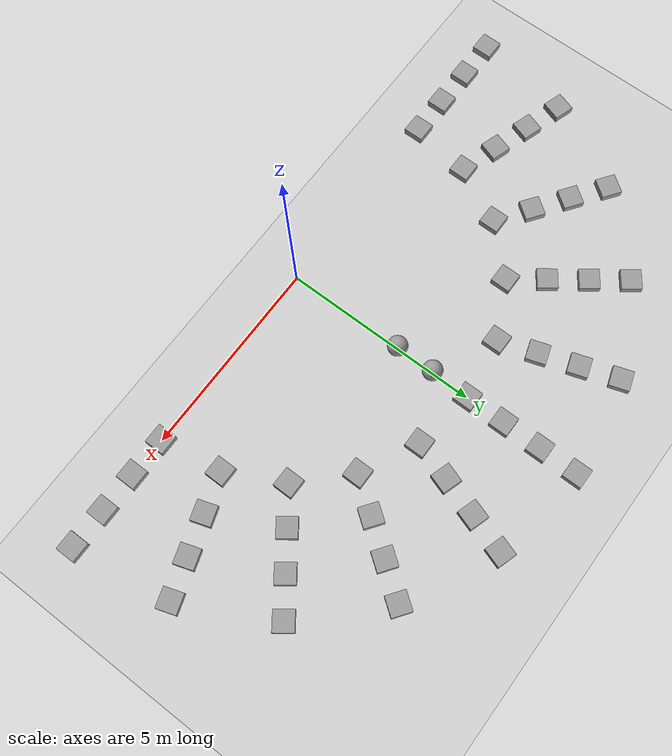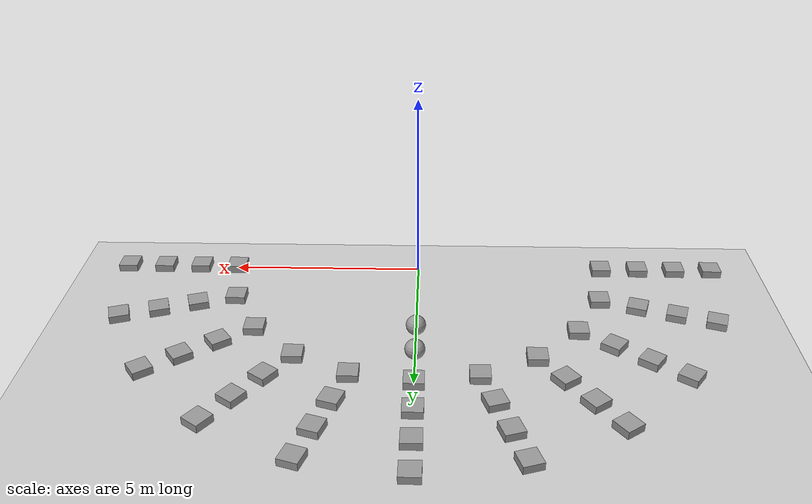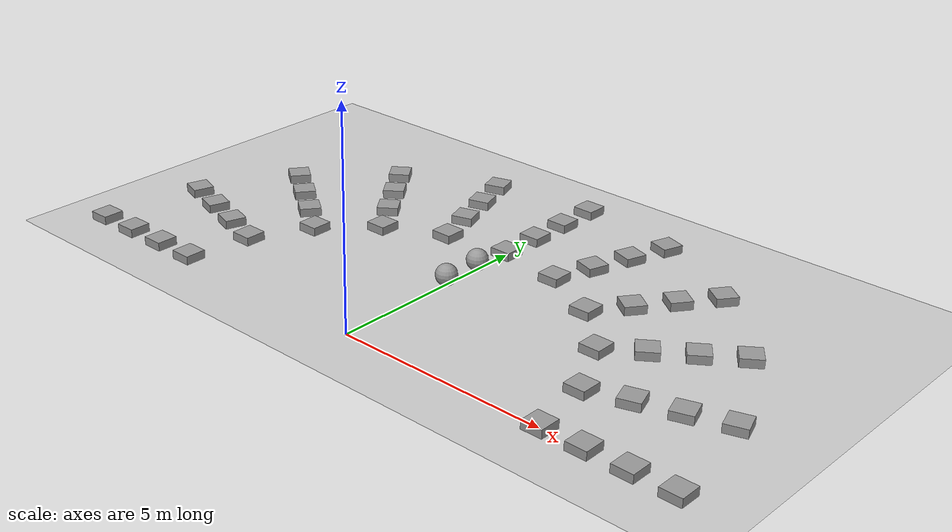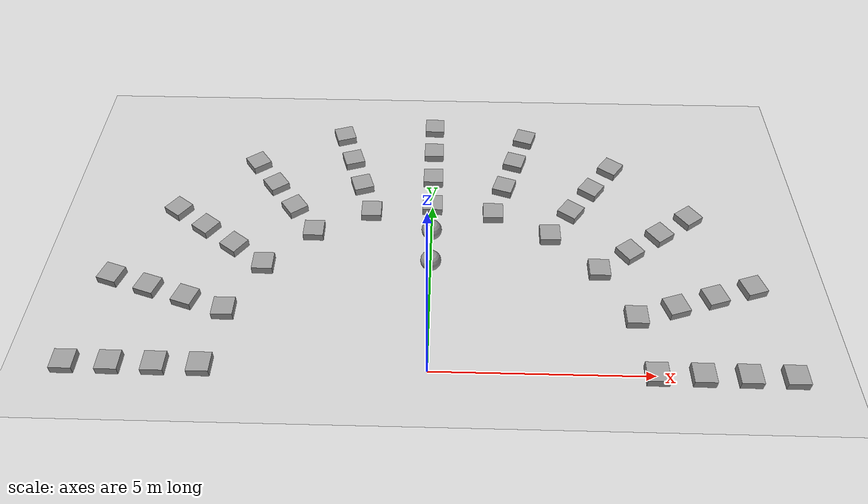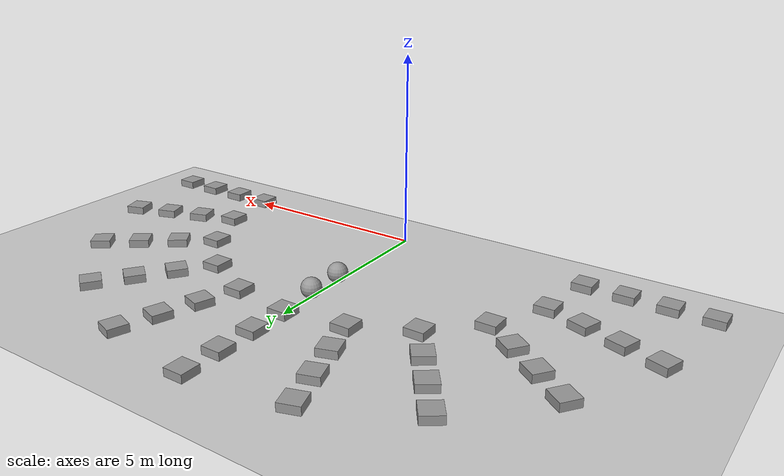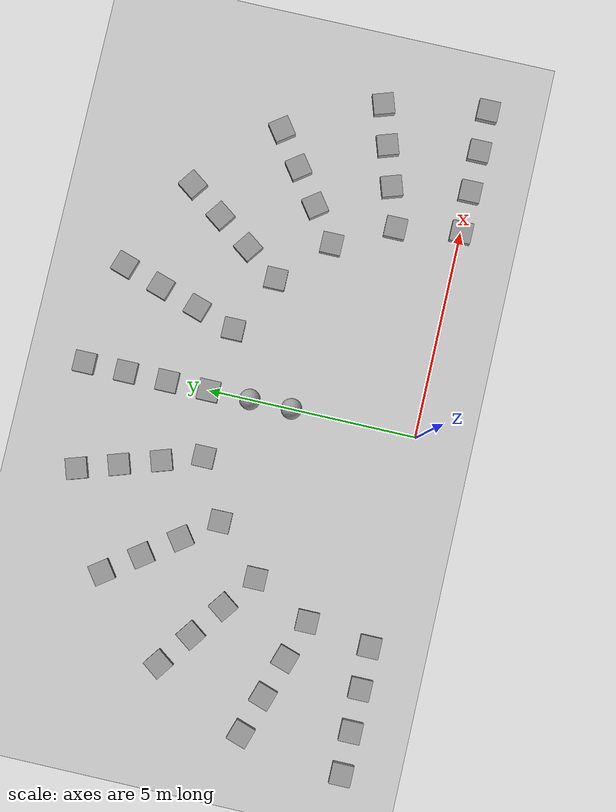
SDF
<?xml version="1.0" ?>
<!-- this file was generated using embedded ruby -->
<sdf version='1.6'>
  <world name='default'>
    <include>
      <uri>model://sun</uri>
    </include>
    <include>
      <uri>model://ground_plane</uri>
    </include>
    <gravity>0 1 -9.81</gravity>
    <physics type="ode">
      <dart>
        <collision_detector>bullet</collision_detector>
      </dart>
    </physics>

    <model name='spheres'>
      <pose>0 3 0.25  0 0 0</pose>
      <link name='link_1'>
        <inertial>
          <mass>1</mass>
          <inertia>
            <ixx>0.025</ixx>
            <ixy>0</ixy>
            <ixz>0</ixz>
            <iyy>0.025</iyy>
            <iyz>0</iyz>
            <izz>0.025</izz>
          </inertia>
        </inertial>
        <collision name='collision'>
          <geometry>
            <sphere>
              <radius>0.25</radius>
            </sphere>
          </geometry>
          <surface>
            <friction>
              <ode>
                <mu>100</mu>
                <mu2>0</mu2>
                <fdir1>1 0 0</fdir1>
              </ode>
            </friction>
          </surface>
        </collision>
        <visual name='visual'>
          <geometry>
            <sphere>
              <radius>0.25</radius>
            </sphere>
          </geometry>
          <material>
            <script>
              <name>Gazebo/Grey</name>
              <uri>file://media/materials/scripts/gazebo.material</uri>
            </script>
          </material>
        </visual>
      </link>
      <link name='link_2'>
        <pose>0 1 0  0 0 0</pose>
        <inertial>
          <mass>1</mass>
          <inertia>
            <ixx>0.025</ixx>
            <ixy>0</ixy>
            <ixz>0</ixz>
            <iyy>0.025</iyy>
            <iyz>0</iyz>
            <izz>0.025</izz>
          </inertia>
        </inertial>
        <collision name='collision'>
          <geometry>
            <sphere>
              <radius>0.25</radius>
            </sphere>
          </geometry>
          <surface>
            <friction>
              <ode>
                <mu>100</mu>
                <mu2>0</mu2>
                <fdir1>1 0 0</fdir1>
              </ode>
            </friction>
          </surface>
        </collision>
        <visual name='visual'>
          <geometry>
            <sphere>
              <radius>0.25</radius>
            </sphere>
          </geometry>
          <material>
            <script>
              <name>Gazebo/Grey</name>
              <uri>file://media/materials/scripts/gazebo.material</uri>
            </script>
          </material>
        </visual>
      </link>
    </model>

    <model name='box_fdir_0'>
      <pose>5.0 0.0 0.1 0 -0 0</pose>
      <link name='link_1'>
        <inertial>
          <mass>1</mass>
          <inertia>
            <ixx>0.02416666666666667</ixx>
            <ixy>0</ixy>
            <ixz>0</ixz>
            <iyy>0.02416666666666667</iyy>
            <iyz>0</iyz>
            <izz>0.041666666666666664</izz>
          </inertia>
        </inertial>
        <collision name='collision'>
          <geometry>
            <box>
              <size>0.5 0.5 0.2</size>
            </box>
          </geometry>
          <surface>
            <friction>
              <ode>
                <mu>100</mu>
                <mu2>0</mu2>
                <fdir1>-0.0 1.0 0</fdir1>
              </ode>
            </friction>
          </surface>
        </collision>
        <visual name='visual'>
          <geometry>
            <box>
              <size>0.5 0.5 0.2</size>
            </box>
          </geometry>
          <material>
            <script>
              <name>Gazebo/Grey</name>
              <uri>file://media/materials/scripts/gazebo.material</uri>
            </script>
          </material>
        </visual>
      </link>
    </model>

    <model name='box_fdir_1'>
      <pose>4.755282581475767 1.545084971874737 0.1 0 -0 0</pose>
      <link name='link_1'>
        <inertial>
          <mass>1</mass>
          <inertia>
            <ixx>0.02416666666666667</ixx>
            <ixy>0</ixy>
            <ixz>0</ixz>
            <iyy>0.02416666666666667</iyy>
            <iyz>0</iyz>
            <izz>0.041666666666666664</izz>
          </inertia>
        </inertial>
        <collision name='collision'>
          <geometry>
            <box>
              <size>0.5 0.5 0.2</size>
            </box>
          </geometry>
          <surface>
            <friction>
              <ode>
                <mu>100</mu>
                <mu2>0</mu2>
                <fdir1>-0.3090169943749474 0.9510565162951535 0</fdir1>
              </ode>
            </friction>
          </surface>
        </collision>
        <visual name='visual'>
          <geometry>
            <box>
              <size>0.5 0.5 0.2</size>
            </box>
          </geometry>
          <material>
            <script>
              <name>Gazebo/Grey</name>
              <uri>file://media/materials/scripts/gazebo.material</uri>
            </script>
          </material>
        </visual>
      </link>
    </model>

    <model name='box_fdir_2'>
      <pose>4.045084971874737 2.938926261462366 0.1 0 -0 0</pose>
      <link name='link_1'>
        <inertial>
          <mass>1</mass>
          <inertia>
            <ixx>0.02416666666666667</ixx>
            <ixy>0</ixy>
            <ixz>0</ixz>
            <iyy>0.02416666666666667</iyy>
            <iyz>0</iyz>
            <izz>0.041666666666666664</izz>
          </inertia>
        </inertial>
        <collision name='collision'>
          <geometry>
            <box>
              <size>0.5 0.5 0.2</size>
            </box>
          </geometry>
          <surface>
            <friction>
              <ode>
                <mu>100</mu>
                <mu2>0</mu2>
                <fdir1>-0.5877852522924731 0.8090169943749475 0</fdir1>
              </ode>
            </friction>
          </surface>
        </collision>
        <visual name='visual'>
          <geometry>
            <box>
              <size>0.5 0.5 0.2</size>
            </box>
          </geometry>
          <material>
            <script>
              <name>Gazebo/Grey</name>
              <uri>file://media/materials/scripts/gazebo.material</uri>
            </script>
          </material>
        </visual>
      </link>
    </model>

    <model name='box_fdir_3'>
      <pose>2.938926261462366 4.045084971874737 0.1 0 -0 0</pose>
      <link name='link_1'>
        <inertial>
          <mass>1</mass>
          <inertia>
            <ixx>0.02416666666666667</ixx>
            <ixy>0</ixy>
            <ixz>0</ixz>
            <iyy>0.02416666666666667</iyy>
            <iyz>0</iyz>
            <izz>0.041666666666666664</izz>
          </inertia>
        </inertial>
        <collision name='collision'>
          <geometry>
            <box>
              <size>0.5 0.5 0.2</size>
            </box>
          </geometry>
          <surface>
            <friction>
              <ode>
                <mu>100</mu>
                <mu2>0</mu2>
                <fdir1>-0.8090169943749475 0.5877852522924731 0</fdir1>
              </ode>
            </friction>
          </surface>
        </collision>
        <visual name='visual'>
          <geometry>
            <box>
              <size>0.5 0.5 0.2</size>
            </box>
          </geometry>
          <material>
            <script>
              <name>Gazebo/Grey</name>
              <uri>file://media/materials/scripts/gazebo.material</uri>
            </script>
          </material>
        </visual>
      </link>
    </model>

    <model name='box_fdir_4'>
      <pose>1.5450849718747373 4.755282581475767 0.1 0 -0 0</pose>
      <link name='link_1'>
        <inertial>
          <mass>1</mass>
          <inertia>
            <ixx>0.02416666666666667</ixx>
            <ixy>0</ixy>
            <ixz>0</ixz>
            <iyy>0.02416666666666667</iyy>
            <iyz>0</iyz>
            <izz>0.041666666666666664</izz>
          </inertia>
        </inertial>
        <collision name='collision'>
          <geometry>
            <box>
              <size>0.5 0.5 0.2</size>
            </box>
          </geometry>
          <surface>
            <friction>
              <ode>
                <mu>100</mu>
                <mu2>0</mu2>
                <fdir1>-0.9510565162951535 0.30901699437494745 0</fdir1>
              </ode>
            </friction>
          </surface>
        </collision>
        <visual name='visual'>
          <geometry>
            <box>
              <size>0.5 0.5 0.2</size>
            </box>
          </geometry>
          <material>
            <script>
              <name>Gazebo/Grey</name>
              <uri>file://media/materials/scripts/gazebo.material</uri>
            </script>
          </material>
        </visual>
      </link>
    </model>

    <model name='box_fdir_5'>
      <pose>3.061616997868383e-16 5.0 0.1 0 -0 0</pose>
      <link name='link_1'>
        <inertial>
          <mass>1</mass>
          <inertia>
            <ixx>0.02416666666666667</ixx>
            <ixy>0</ixy>
            <ixz>0</ixz>
            <iyy>0.02416666666666667</iyy>
            <iyz>0</iyz>
            <izz>0.041666666666666664</izz>
          </inertia>
        </inertial>
        <collision name='collision'>
          <geometry>
            <box>
              <size>0.5 0.5 0.2</size>
            </box>
          </geometry>
          <surface>
            <friction>
              <ode>
                <mu>100</mu>
                <mu2>0</mu2>
                <fdir1>-1.0 6.123233995736766e-17 0</fdir1>
              </ode>
            </friction>
          </surface>
        </collision>
        <visual name='visual'>
          <geometry>
            <box>
              <size>0.5 0.5 0.2</size>
            </box>
          </geometry>
          <material>
            <script>
              <name>Gazebo/Grey</name>
              <uri>file://media/materials/scripts/gazebo.material</uri>
            </script>
          </material>
        </visual>
      </link>
    </model>

    <model name='box_fdir_6'>
      <pose>-1.5450849718747368 4.755282581475768 0.1 0 -0 0</pose>
      <link name='link_1'>
        <inertial>
          <mass>1</mass>
          <inertia>
            <ixx>0.02416666666666667</ixx>
            <ixy>0</ixy>
            <ixz>0</ixz>
            <iyy>0.02416666666666667</iyy>
            <iyz>0</iyz>
            <izz>0.041666666666666664</izz>
          </inertia>
        </inertial>
        <collision name='collision'>
          <geometry>
            <box>
              <size>0.5 0.5 0.2</size>
            </box>
          </geometry>
          <surface>
            <friction>
              <ode>
                <mu>100</mu>
                <mu2>0</mu2>
                <fdir1>-0.9510565162951536 -0.30901699437494734 0</fdir1>
              </ode>
            </friction>
          </surface>
        </collision>
        <visual name='visual'>
          <geometry>
            <box>
              <size>0.5 0.5 0.2</size>
            </box>
          </geometry>
          <material>
            <script>
              <name>Gazebo/Grey</name>
              <uri>file://media/materials/scripts/gazebo.material</uri>
            </script>
          </material>
        </visual>
      </link>
    </model>

    <model name='box_fdir_7'>
      <pose>-2.938926261462365 4.045084971874737 0.1 0 -0 0</pose>
      <link name='link_1'>
        <inertial>
          <mass>1</mass>
          <inertia>
            <ixx>0.02416666666666667</ixx>
            <ixy>0</ixy>
            <ixz>0</ixz>
            <iyy>0.02416666666666667</iyy>
            <iyz>0</iyz>
            <izz>0.041666666666666664</izz>
          </inertia>
        </inertial>
        <collision name='collision'>
          <geometry>
            <box>
              <size>0.5 0.5 0.2</size>
            </box>
          </geometry>
          <surface>
            <friction>
              <ode>
                <mu>100</mu>
                <mu2>0</mu2>
                <fdir1>-0.8090169943749475 -0.587785252292473 0</fdir1>
              </ode>
            </friction>
          </surface>
        </collision>
        <visual name='visual'>
          <geometry>
            <box>
              <size>0.5 0.5 0.2</size>
            </box>
          </geometry>
          <material>
            <script>
              <name>Gazebo/Grey</name>
              <uri>file://media/materials/scripts/gazebo.material</uri>
            </script>
          </material>
        </visual>
      </link>
    </model>

    <model name='box_fdir_8'>
      <pose>-4.045084971874736 2.9389262614623664 0.1 0 -0 0</pose>
      <link name='link_1'>
        <inertial>
          <mass>1</mass>
          <inertia>
            <ixx>0.02416666666666667</ixx>
            <ixy>0</ixy>
            <ixz>0</ixz>
            <iyy>0.02416666666666667</iyy>
            <iyz>0</iyz>
            <izz>0.041666666666666664</izz>
          </inertia>
        </inertial>
        <collision name='collision'>
          <geometry>
            <box>
              <size>0.5 0.5 0.2</size>
            </box>
          </geometry>
          <surface>
            <friction>
              <ode>
                <mu>100</mu>
                <mu2>0</mu2>
                <fdir1>-0.5877852522924732 -0.8090169943749473 0</fdir1>
              </ode>
            </friction>
          </surface>
        </collision>
        <visual name='visual'>
          <geometry>
            <box>
              <size>0.5 0.5 0.2</size>
            </box>
          </geometry>
          <material>
            <script>
              <name>Gazebo/Grey</name>
              <uri>file://media/materials/scripts/gazebo.material</uri>
            </script>
          </material>
        </visual>
      </link>
    </model>

    <model name='box_fdir_9'>
      <pose>-4.755282581475767 1.5450849718747375 0.1 0 -0 0</pose>
      <link name='link_1'>
        <inertial>
          <mass>1</mass>
          <inertia>
            <ixx>0.02416666666666667</ixx>
            <ixy>0</ixy>
            <ixz>0</ixz>
            <iyy>0.02416666666666667</iyy>
            <iyz>0</iyz>
            <izz>0.041666666666666664</izz>
          </inertia>
        </inertial>
        <collision name='collision'>
          <geometry>
            <box>
              <size>0.5 0.5 0.2</size>
            </box>
          </geometry>
          <surface>
            <friction>
              <ode>
                <mu>100</mu>
                <mu2>0</mu2>
                <fdir1>-0.3090169943749475 -0.9510565162951535 0</fdir1>
              </ode>
            </friction>
          </surface>
        </collision>
        <visual name='visual'>
          <geometry>
            <box>
              <size>0.5 0.5 0.2</size>
            </box>
          </geometry>
          <material>
            <script>
              <name>Gazebo/Grey</name>
              <uri>file://media/materials/scripts/gazebo.material</uri>
            </script>
          </material>
        </visual>
      </link>
    </model>

    <model name='box_fdir_10'>
      <pose>-5.0 6.123233995736766e-16 0.1 0 -0 0</pose>
      <link name='link_1'>
        <inertial>
          <mass>1</mass>
          <inertia>
            <ixx>0.02416666666666667</ixx>
            <ixy>0</ixy>
            <ixz>0</ixz>
            <iyy>0.02416666666666667</iyy>
            <iyz>0</iyz>
            <izz>0.041666666666666664</izz>
          </inertia>
        </inertial>
        <collision name='collision'>
          <geometry>
            <box>
              <size>0.5 0.5 0.2</size>
            </box>
          </geometry>
          <surface>
            <friction>
              <ode>
                <mu>100</mu>
                <mu2>0</mu2>
                <fdir1>-1.2246467991473532e-16 -1.0 0</fdir1>
              </ode>
            </friction>
          </surface>
        </collision>
        <visual name='visual'>
          <geometry>
            <box>
              <size>0.5 0.5 0.2</size>
            </box>
          </geometry>
          <material>
            <script>
              <name>Gazebo/Grey</name>
              <uri>file://media/materials/scripts/gazebo.material</uri>
            </script>
          </material>
        </visual>
      </link>
    </model>

    <model name='box_collision_0'>
      <pose>6.0 0.0 0.1 0 -0 0</pose>
      <link name='link_1'>
        <inertial>
          <mass>1</mass>
          <inertia>
            <ixx>0.02416666666666667</ixx>
            <ixy>0</ixy>
            <ixz>0</ixz>
            <iyy>0.02416666666666667</iyy>
            <iyz>0</iyz>
            <izz>0.041666666666666664</izz>
          </inertia>
        </inertial>
        <collision name='collision'>
          <geometry>
            <box>
              <size>0.5 0.5 0.2</size>
            </box>
          </geometry>
          <pose>0 0 0  0 0 0.0</pose>
          <surface>
            <friction>
              <ode>
                <mu>100</mu>
                <mu2>0</mu2>
                <fdir1>0 1 0</fdir1>
              </ode>
            </friction>
          </surface>
        </collision>
        <visual name='visual'>
          <geometry>
            <box>
              <size>0.5 0.5 0.2</size>
            </box>
          </geometry>
          <pose>0 0 0  0 0 0.0</pose>
          <material>
            <script>
              <name>Gazebo/Grey</name>
              <uri>file://media/materials/scripts/gazebo.material</uri>
            </script>
          </material>
        </visual>
      </link>
    </model>

    <model name='box_collision_1'>
      <pose>5.706339097770921 1.8541019662496843 0.1 0 -0 0</pose>
      <link name='link_1'>
        <inertial>
          <mass>1</mass>
          <inertia>
            <ixx>0.02416666666666667</ixx>
            <ixy>0</ixy>
            <ixz>0</ixz>
            <iyy>0.02416666666666667</iyy>
            <iyz>0</iyz>
            <izz>0.041666666666666664</izz>
          </inertia>
        </inertial>
        <collision name='collision'>
          <geometry>
            <box>
              <size>0.5 0.5 0.2</size>
            </box>
          </geometry>
          <pose>0 0 0  0 0 0.3141592653589793</pose>
          <surface>
            <friction>
              <ode>
                <mu>100</mu>
                <mu2>0</mu2>
                <fdir1>0 1 0</fdir1>
              </ode>
            </friction>
          </surface>
        </collision>
        <visual name='visual'>
          <geometry>
            <box>
              <size>0.5 0.5 0.2</size>
            </box>
          </geometry>
          <pose>0 0 0  0 0 0.3141592653589793</pose>
          <material>
            <script>
              <name>Gazebo/Grey</name>
              <uri>file://media/materials/scripts/gazebo.material</uri>
            </script>
          </material>
        </visual>
      </link>
    </model>

    <model name='box_collision_2'>
      <pose>4.854101966249685 3.526711513754839 0.1 0 -0 0</pose>
      <link name='link_1'>
        <inertial>
          <mass>1</mass>
          <inertia>
            <ixx>0.02416666666666667</ixx>
            <ixy>0</ixy>
            <ixz>0</ixz>
            <iyy>0.02416666666666667</iyy>
            <iyz>0</iyz>
            <izz>0.041666666666666664</izz>
          </inertia>
        </inertial>
        <collision name='collision'>
          <geometry>
            <box>
              <size>0.5 0.5 0.2</size>
            </box>
          </geometry>
          <pose>0 0 0  0 0 0.6283185307179586</pose>
          <surface>
            <friction>
              <ode>
                <mu>100</mu>
                <mu2>0</mu2>
                <fdir1>0 1 0</fdir1>
              </ode>
            </friction>
          </surface>
        </collision>
        <visual name='visual'>
          <geometry>
            <box>
              <size>0.5 0.5 0.2</size>
            </box>
          </geometry>
          <pose>0 0 0  0 0 0.6283185307179586</pose>
          <material>
            <script>
              <name>Gazebo/Grey</name>
              <uri>file://media/materials/scripts/gazebo.material</uri>
            </script>
          </material>
        </visual>
      </link>
    </model>

    <model name='box_collision_3'>
      <pose>3.526711513754839 4.854101966249685 0.1 0 -0 0</pose>
      <link name='link_1'>
        <inertial>
          <mass>1</mass>
          <inertia>
            <ixx>0.02416666666666667</ixx>
            <ixy>0</ixy>
            <ixz>0</ixz>
            <iyy>0.02416666666666667</iyy>
            <iyz>0</iyz>
            <izz>0.041666666666666664</izz>
          </inertia>
        </inertial>
        <collision name='collision'>
          <geometry>
            <box>
              <size>0.5 0.5 0.2</size>
            </box>
          </geometry>
          <pose>0 0 0  0 0 0.9424777960769379</pose>
          <surface>
            <friction>
              <ode>
                <mu>100</mu>
                <mu2>0</mu2>
                <fdir1>0 1 0</fdir1>
              </ode>
            </friction>
          </surface>
        </collision>
        <visual name='visual'>
          <geometry>
            <box>
              <size>0.5 0.5 0.2</size>
            </box>
          </geometry>
          <pose>0 0 0  0 0 0.9424777960769379</pose>
          <material>
            <script>
              <name>Gazebo/Grey</name>
              <uri>file://media/materials/scripts/gazebo.material</uri>
            </script>
          </material>
        </visual>
      </link>
    </model>

    <model name='box_collision_4'>
      <pose>1.8541019662496847 5.706339097770921 0.1 0 -0 0</pose>
      <link name='link_1'>
        <inertial>
          <mass>1</mass>
          <inertia>
            <ixx>0.02416666666666667</ixx>
            <ixy>0</ixy>
            <ixz>0</ixz>
            <iyy>0.02416666666666667</iyy>
            <iyz>0</iyz>
            <izz>0.041666666666666664</izz>
          </inertia>
        </inertial>
        <collision name='collision'>
          <geometry>
            <box>
              <size>0.5 0.5 0.2</size>
            </box>
          </geometry>
          <pose>0 0 0  0 0 1.2566370614359172</pose>
          <surface>
            <friction>
              <ode>
                <mu>100</mu>
                <mu2>0</mu2>
                <fdir1>0 1 0</fdir1>
              </ode>
            </friction>
          </surface>
        </collision>
        <visual name='visual'>
          <geometry>
            <box>
              <size>0.5 0.5 0.2</size>
            </box>
          </geometry>
          <pose>0 0 0  0 0 1.2566370614359172</pose>
          <material>
            <script>
              <name>Gazebo/Grey</name>
              <uri>file://media/materials/scripts/gazebo.material</uri>
            </script>
          </material>
        </visual>
      </link>
    </model>

    <model name='box_collision_5'>
      <pose>3.6739403974420594e-16 6.0 0.1 0 -0 0</pose>
      <link name='link_1'>
        <inertial>
          <mass>1</mass>
          <inertia>
            <ixx>0.02416666666666667</ixx>
            <ixy>0</ixy>
            <ixz>0</ixz>
            <iyy>0.02416666666666667</iyy>
            <iyz>0</iyz>
            <izz>0.041666666666666664</izz>
          </inertia>
        </inertial>
        <collision name='collision'>
          <geometry>
            <box>
              <size>0.5 0.5 0.2</size>
            </box>
          </geometry>
          <pose>0 0 0  0 0 1.5707963267948966</pose>
          <surface>
            <friction>
              <ode>
                <mu>100</mu>
                <mu2>0</mu2>
                <fdir1>0 1 0</fdir1>
              </ode>
            </friction>
          </surface>
        </collision>
        <visual name='visual'>
          <geometry>
            <box>
              <size>0.5 0.5 0.2</size>
            </box>
          </geometry>
          <pose>0 0 0  0 0 1.5707963267948966</pose>
          <material>
            <script>
              <name>Gazebo/Grey</name>
              <uri>file://media/materials/scripts/gazebo.material</uri>
            </script>
          </material>
        </visual>
      </link>
    </model>

    <model name='box_collision_6'>
      <pose>-1.854101966249684 5.706339097770922 0.1 0 -0 0</pose>
      <link name='link_1'>
        <inertial>
          <mass>1</mass>
          <inertia>
            <ixx>0.02416666666666667</ixx>
            <ixy>0</ixy>
            <ixz>0</ixz>
            <iyy>0.02416666666666667</iyy>
            <iyz>0</iyz>
            <izz>0.041666666666666664</izz>
          </inertia>
        </inertial>
        <collision name='collision'>
          <geometry>
            <box>
              <size>0.5 0.5 0.2</size>
            </box>
          </geometry>
          <pose>0 0 0  0 0 1.8849555921538759</pose>
          <surface>
            <friction>
              <ode>
                <mu>100</mu>
                <mu2>0</mu2>
                <fdir1>0 1 0</fdir1>
              </ode>
            </friction>
          </surface>
        </collision>
        <visual name='visual'>
          <geometry>
            <box>
              <size>0.5 0.5 0.2</size>
            </box>
          </geometry>
          <pose>0 0 0  0 0 1.8849555921538759</pose>
          <material>
            <script>
              <name>Gazebo/Grey</name>
              <uri>file://media/materials/scripts/gazebo.material</uri>
            </script>
          </material>
        </visual>
      </link>
    </model>

    <model name='box_collision_7'>
      <pose>-3.5267115137548384 4.854101966249685 0.1 0 -0 0</pose>
      <link name='link_1'>
        <inertial>
          <mass>1</mass>
          <inertia>
            <ixx>0.02416666666666667</ixx>
            <ixy>0</ixy>
            <ixz>0</ixz>
            <iyy>0.02416666666666667</iyy>
            <iyz>0</iyz>
            <izz>0.041666666666666664</izz>
          </inertia>
        </inertial>
        <collision name='collision'>
          <geometry>
            <box>
              <size>0.5 0.5 0.2</size>
            </box>
          </geometry>
          <pose>0 0 0  0 0 2.199114857512855</pose>
          <surface>
            <friction>
              <ode>
                <mu>100</mu>
                <mu2>0</mu2>
                <fdir1>0 1 0</fdir1>
              </ode>
            </friction>
          </surface>
        </collision>
        <visual name='visual'>
          <geometry>
            <box>
              <size>0.5 0.5 0.2</size>
            </box>
          </geometry>
          <pose>0 0 0  0 0 2.199114857512855</pose>
          <material>
            <script>
              <name>Gazebo/Grey</name>
              <uri>file://media/materials/scripts/gazebo.material</uri>
            </script>
          </material>
        </visual>
      </link>
    </model>

    <model name='box_collision_8'>
      <pose>-4.854101966249684 3.5267115137548393 0.1 0 -0 0</pose>
      <link name='link_1'>
        <inertial>
          <mass>1</mass>
          <inertia>
            <ixx>0.02416666666666667</ixx>
            <ixy>0</ixy>
            <ixz>0</ixz>
            <iyy>0.02416666666666667</iyy>
            <iyz>0</iyz>
            <izz>0.041666666666666664</izz>
          </inertia>
        </inertial>
        <collision name='collision'>
          <geometry>
            <box>
              <size>0.5 0.5 0.2</size>
            </box>
          </geometry>
          <pose>0 0 0  0 0 2.5132741228718345</pose>
          <surface>
            <friction>
              <ode>
                <mu>100</mu>
                <mu2>0</mu2>
                <fdir1>0 1 0</fdir1>
              </ode>
            </friction>
          </surface>
        </collision>
        <visual name='visual'>
          <geometry>
            <box>
              <size>0.5 0.5 0.2</size>
            </box>
          </geometry>
          <pose>0 0 0  0 0 2.5132741228718345</pose>
          <material>
            <script>
              <name>Gazebo/Grey</name>
              <uri>file://media/materials/scripts/gazebo.material</uri>
            </script>
          </material>
        </visual>
      </link>
    </model>

    <model name='box_collision_9'>
      <pose>-5.706339097770921 1.8541019662496852 0.1 0 -0 0</pose>
      <link name='link_1'>
        <inertial>
          <mass>1</mass>
          <inertia>
            <ixx>0.02416666666666667</ixx>
            <ixy>0</ixy>
            <ixz>0</ixz>
            <iyy>0.02416666666666667</iyy>
            <iyz>0</iyz>
            <izz>0.041666666666666664</izz>
          </inertia>
        </inertial>
        <collision name='collision'>
          <geometry>
            <box>
              <size>0.5 0.5 0.2</size>
            </box>
          </geometry>
          <pose>0 0 0  0 0 2.827433388230814</pose>
          <surface>
            <friction>
              <ode>
                <mu>100</mu>
                <mu2>0</mu2>
                <fdir1>0 1 0</fdir1>
              </ode>
            </friction>
          </surface>
        </collision>
        <visual name='visual'>
          <geometry>
            <box>
              <size>0.5 0.5 0.2</size>
            </box>
          </geometry>
          <pose>0 0 0  0 0 2.827433388230814</pose>
          <material>
            <script>
              <name>Gazebo/Grey</name>
              <uri>file://media/materials/scripts/gazebo.material</uri>
            </script>
          </material>
        </visual>
      </link>
    </model>

    <model name='box_collision_10'>
      <pose>-6.0 7.347880794884119e-16 0.1 0 -0 0</pose>
      <link name='link_1'>
        <inertial>
          <mass>1</mass>
          <inertia>
            <ixx>0.02416666666666667</ixx>
            <ixy>0</ixy>
            <ixz>0</ixz>
            <iyy>0.02416666666666667</iyy>
            <iyz>0</iyz>
            <izz>0.041666666666666664</izz>
          </inertia>
        </inertial>
        <collision name='collision'>
          <geometry>
            <box>
              <size>0.5 0.5 0.2</size>
            </box>
          </geometry>
          <pose>0 0 0  0 0 3.141592653589793</pose>
          <surface>
            <friction>
              <ode>
                <mu>100</mu>
                <mu2>0</mu2>
                <fdir1>0 1 0</fdir1>
              </ode>
            </friction>
          </surface>
        </collision>
        <visual name='visual'>
          <geometry>
            <box>
              <size>0.5 0.5 0.2</size>
            </box>
          </geometry>
          <pose>0 0 0  0 0 3.141592653589793</pose>
          <material>
            <script>
              <name>Gazebo/Grey</name>
              <uri>file://media/materials/scripts/gazebo.material</uri>
            </script>
          </material>
        </visual>
      </link>
    </model>

    <model name='box_link_0'>
      <pose>7.0 0.0 0.1 0 -0 0</pose>
      <link name='link_1'>
        <pose>0 0 0  0 0 0.0</pose>
        <inertial>
          <mass>1</mass>
          <inertia>
            <ixx>0.02416666666666667</ixx>
            <ixy>0</ixy>
            <ixz>0</ixz>
            <iyy>0.02416666666666667</iyy>
            <iyz>0</iyz>
            <izz>0.041666666666666664</izz>
          </inertia>
        </inertial>
        <collision name='collision'>
          <geometry>
            <box>
              <size>0.5 0.5 0.2</size>
            </box>
          </geometry>
          <surface>
            <friction>
              <ode>
                <mu>100</mu>
                <mu2>0</mu2>
                <fdir1>0 1 0</fdir1>
              </ode>
            </friction>
          </surface>
        </collision>
        <visual name='visual'>
          <geometry>
            <box>
              <size>0.5 0.5 0.2</size>
            </box>
          </geometry>
          <material>
            <script>
              <name>Gazebo/Grey</name>
              <uri>file://media/materials/scripts/gazebo.material</uri>
            </script>
          </material>
        </visual>
      </link>
    </model>

    <model name='box_link_1'>
      <pose>6.657395614066075 2.1631189606246317 0.1 0 -0 0</pose>
      <link name='link_1'>
        <pose>0 0 0  0 0 0.3141592653589793</pose>
        <inertial>
          <mass>1</mass>
          <inertia>
            <ixx>0.02416666666666667</ixx>
            <ixy>0</ixy>
            <ixz>0</ixz>
            <iyy>0.02416666666666667</iyy>
            <iyz>0</iyz>
            <izz>0.041666666666666664</izz>
          </inertia>
        </inertial>
        <collision name='collision'>
          <geometry>
            <box>
              <size>0.5 0.5 0.2</size>
            </box>
          </geometry>
          <surface>
            <friction>
              <ode>
                <mu>100</mu>
                <mu2>0</mu2>
                <fdir1>0 1 0</fdir1>
              </ode>
            </friction>
          </surface>
        </collision>
        <visual name='visual'>
          <geometry>
            <box>
              <size>0.5 0.5 0.2</size>
            </box>
          </geometry>
          <material>
            <script>
              <name>Gazebo/Grey</name>
              <uri>file://media/materials/scripts/gazebo.material</uri>
            </script>
          </material>
        </visual>
      </link>
    </model>

    <model name='box_link_2'>
      <pose>5.663118960624632 4.114496766047312 0.1 0 -0 0</pose>
      <link name='link_1'>
        <pose>0 0 0  0 0 0.6283185307179586</pose>
        <inertial>
          <mass>1</mass>
          <inertia>
            <ixx>0.02416666666666667</ixx>
            <ixy>0</ixy>
            <ixz>0</ixz>
            <iyy>0.02416666666666667</iyy>
            <iyz>0</iyz>
            <izz>0.041666666666666664</izz>
          </inertia>
        </inertial>
        <collision name='collision'>
          <geometry>
            <box>
              <size>0.5 0.5 0.2</size>
            </box>
          </geometry>
          <surface>
            <friction>
              <ode>
                <mu>100</mu>
                <mu2>0</mu2>
                <fdir1>0 1 0</fdir1>
              </ode>
            </friction>
          </surface>
        </collision>
        <visual name='visual'>
          <geometry>
            <box>
              <size>0.5 0.5 0.2</size>
            </box>
          </geometry>
          <material>
            <script>
              <name>Gazebo/Grey</name>
              <uri>file://media/materials/scripts/gazebo.material</uri>
            </script>
          </material>
        </visual>
      </link>
    </model>

    <model name='box_link_3'>
      <pose>4.114496766047312 5.663118960624632 0.1 0 -0 0</pose>
      <link name='link_1'>
        <pose>0 0 0  0 0 0.9424777960769379</pose>
        <inertial>
          <mass>1</mass>
          <inertia>
            <ixx>0.02416666666666667</ixx>
            <ixy>0</ixy>
            <ixz>0</ixz>
            <iyy>0.02416666666666667</iyy>
            <iyz>0</iyz>
            <izz>0.041666666666666664</izz>
          </inertia>
        </inertial>
        <collision name='collision'>
          <geometry>
            <box>
              <size>0.5 0.5 0.2</size>
            </box>
          </geometry>
          <surface>
            <friction>
              <ode>
                <mu>100</mu>
                <mu2>0</mu2>
                <fdir1>0 1 0</fdir1>
              </ode>
            </friction>
          </surface>
        </collision>
        <visual name='visual'>
          <geometry>
            <box>
              <size>0.5 0.5 0.2</size>
            </box>
          </geometry>
          <material>
            <script>
              <name>Gazebo/Grey</name>
              <uri>file://media/materials/scripts/gazebo.material</uri>
            </script>
          </material>
        </visual>
      </link>
    </model>

    <model name='box_link_4'>
      <pose>2.163118960624632 6.657395614066075 0.1 0 -0 0</pose>
      <link name='link_1'>
        <pose>0 0 0  0 0 1.2566370614359172</pose>
        <inertial>
          <mass>1</mass>
          <inertia>
            <ixx>0.02416666666666667</ixx>
            <ixy>0</ixy>
            <ixz>0</ixz>
            <iyy>0.02416666666666667</iyy>
            <iyz>0</iyz>
            <izz>0.041666666666666664</izz>
          </inertia>
        </inertial>
        <collision name='collision'>
          <geometry>
            <box>
              <size>0.5 0.5 0.2</size>
            </box>
          </geometry>
          <surface>
            <friction>
              <ode>
                <mu>100</mu>
                <mu2>0</mu2>
                <fdir1>0 1 0</fdir1>
              </ode>
            </friction>
          </surface>
        </collision>
        <visual name='visual'>
          <geometry>
            <box>
              <size>0.5 0.5 0.2</size>
            </box>
          </geometry>
          <material>
            <script>
              <name>Gazebo/Grey</name>
              <uri>file://media/materials/scripts/gazebo.material</uri>
            </script>
          </material>
        </visual>
      </link>
    </model>

    <model name='box_link_5'>
      <pose>4.286263797015736e-16 7.0 0.1 0 -0 0</pose>
      <link name='link_1'>
        <pose>0 0 0  0 0 1.5707963267948966</pose>
        <inertial>
          <mass>1</mass>
          <inertia>
            <ixx>0.02416666666666667</ixx>
            <ixy>0</ixy>
            <ixz>0</ixz>
            <iyy>0.02416666666666667</iyy>
            <iyz>0</iyz>
            <izz>0.041666666666666664</izz>
          </inertia>
        </inertial>
        <collision name='collision'>
          <geometry>
            <box>
              <size>0.5 0.5 0.2</size>
            </box>
          </geometry>
          <surface>
            <friction>
              <ode>
                <mu>100</mu>
                <mu2>0</mu2>
                <fdir1>0 1 0</fdir1>
              </ode>
            </friction>
          </surface>
        </collision>
        <visual name='visual'>
          <geometry>
            <box>
              <size>0.5 0.5 0.2</size>
            </box>
          </geometry>
          <material>
            <script>
              <name>Gazebo/Grey</name>
              <uri>file://media/materials/scripts/gazebo.material</uri>
            </script>
          </material>
        </visual>
      </link>
    </model>

    <model name='box_link_6'>
      <pose>-2.1631189606246313 6.6573956140660755 0.1 0 -0 0</pose>
      <link name='link_1'>
        <pose>0 0 0  0 0 1.8849555921538759</pose>
        <inertial>
          <mass>1</mass>
          <inertia>
            <ixx>0.02416666666666667</ixx>
            <ixy>0</ixy>
            <ixz>0</ixz>
            <iyy>0.02416666666666667</iyy>
            <iyz>0</iyz>
            <izz>0.041666666666666664</izz>
          </inertia>
        </inertial>
        <collision name='collision'>
          <geometry>
            <box>
              <size>0.5 0.5 0.2</size>
            </box>
          </geometry>
          <surface>
            <friction>
              <ode>
                <mu>100</mu>
                <mu2>0</mu2>
                <fdir1>0 1 0</fdir1>
              </ode>
            </friction>
          </surface>
        </collision>
        <visual name='visual'>
          <geometry>
            <box>
              <size>0.5 0.5 0.2</size>
            </box>
          </geometry>
          <material>
            <script>
              <name>Gazebo/Grey</name>
              <uri>file://media/materials/scripts/gazebo.material</uri>
            </script>
          </material>
        </visual>
      </link>
    </model>

    <model name='box_link_7'>
      <pose>-4.114496766047311 5.663118960624632 0.1 0 -0 0</pose>
      <link name='link_1'>
        <pose>0 0 0  0 0 2.199114857512855</pose>
        <inertial>
          <mass>1</mass>
          <inertia>
            <ixx>0.02416666666666667</ixx>
            <ixy>0</ixy>
            <ixz>0</ixz>
            <iyy>0.02416666666666667</iyy>
            <iyz>0</iyz>
            <izz>0.041666666666666664</izz>
          </inertia>
        </inertial>
        <collision name='collision'>
          <geometry>
            <box>
              <size>0.5 0.5 0.2</size>
            </box>
          </geometry>
          <surface>
            <friction>
              <ode>
                <mu>100</mu>
                <mu2>0</mu2>
                <fdir1>0 1 0</fdir1>
              </ode>
            </friction>
          </surface>
        </collision>
        <visual name='visual'>
          <geometry>
            <box>
              <size>0.5 0.5 0.2</size>
            </box>
          </geometry>
          <material>
            <script>
              <name>Gazebo/Grey</name>
              <uri>file://media/materials/scripts/gazebo.material</uri>
            </script>
          </material>
        </visual>
      </link>
    </model>

    <model name='box_link_8'>
      <pose>-5.663118960624631 4.114496766047313 0.1 0 -0 0</pose>
      <link name='link_1'>
        <pose>0 0 0  0 0 2.5132741228718345</pose>
        <inertial>
          <mass>1</mass>
          <inertia>
            <ixx>0.02416666666666667</ixx>
            <ixy>0</ixy>
            <ixz>0</ixz>
            <iyy>0.02416666666666667</iyy>
            <iyz>0</iyz>
            <izz>0.041666666666666664</izz>
          </inertia>
        </inertial>
        <collision name='collision'>
          <geometry>
            <box>
              <size>0.5 0.5 0.2</size>
            </box>
          </geometry>
          <surface>
            <friction>
              <ode>
                <mu>100</mu>
                <mu2>0</mu2>
                <fdir1>0 1 0</fdir1>
              </ode>
            </friction>
          </surface>
        </collision>
        <visual name='visual'>
          <geometry>
            <box>
              <size>0.5 0.5 0.2</size>
            </box>
          </geometry>
          <material>
            <script>
              <name>Gazebo/Grey</name>
              <uri>file://media/materials/scripts/gazebo.material</uri>
            </script>
          </material>
        </visual>
      </link>
    </model>

    <model name='box_link_9'>
      <pose>-6.657395614066075 2.1631189606246326 0.1 0 -0 0</pose>
      <link name='link_1'>
        <pose>0 0 0  0 0 2.827433388230814</pose>
        <inertial>
          <mass>1</mass>
          <inertia>
            <ixx>0.02416666666666667</ixx>
            <ixy>0</ixy>
            <ixz>0</ixz>
            <iyy>0.02416666666666667</iyy>
            <iyz>0</iyz>
            <izz>0.041666666666666664</izz>
          </inertia>
        </inertial>
        <collision name='collision'>
          <geometry>
            <box>
              <size>0.5 0.5 0.2</size>
            </box>
          </geometry>
          <surface>
            <friction>
              <ode>
                <mu>100</mu>
                <mu2>0</mu2>
                <fdir1>0 1 0</fdir1>
              </ode>
            </friction>
          </surface>
        </collision>
        <visual name='visual'>
          <geometry>
            <box>
              <size>0.5 0.5 0.2</size>
            </box>
          </geometry>
          <material>
            <script>
              <name>Gazebo/Grey</name>
              <uri>file://media/materials/scripts/gazebo.material</uri>
            </script>
          </material>
        </visual>
      </link>
    </model>

    <model name='box_link_10'>
      <pose>-7.0 8.572527594031472e-16 0.1 0 -0 0</pose>
      <link name='link_1'>
        <pose>0 0 0  0 0 3.141592653589793</pose>
        <inertial>
          <mass>1</mass>
          <inertia>
            <ixx>0.02416666666666667</ixx>
            <ixy>0</ixy>
            <ixz>0</ixz>
            <iyy>0.02416666666666667</iyy>
            <iyz>0</iyz>
            <izz>0.041666666666666664</izz>
          </inertia>
        </inertial>
        <collision name='collision'>
          <geometry>
            <box>
              <size>0.5 0.5 0.2</size>
            </box>
          </geometry>
          <surface>
            <friction>
              <ode>
                <mu>100</mu>
                <mu2>0</mu2>
                <fdir1>0 1 0</fdir1>
              </ode>
            </friction>
          </surface>
        </collision>
        <visual name='visual'>
          <geometry>
            <box>
              <size>0.5 0.5 0.2</size>
            </box>
          </geometry>
          <material>
            <script>
              <name>Gazebo/Grey</name>
              <uri>file://media/materials/scripts/gazebo.material</uri>
            </script>
          </material>
        </visual>
      </link>
    </model>

    <model name='box_model_0'>
      <pose>8.0 0.0 0.1 0 -0 0.0</pose>
      <link name='link_1'>
        <inertial>
          <mass>1</mass>
          <inertia>
            <ixx>0.02416666666666667</ixx>
            <ixy>0</ixy>
            <ixz>0</ixz>
            <iyy>0.02416666666666667</iyy>
            <iyz>0</iyz>
            <izz>0.041666666666666664</izz>
          </inertia>
        </inertial>
        <collision name='collision'>
          <geometry>
            <box>
              <size>0.5 0.5 0.2</size>
            </box>
          </geometry>
          <surface>
            <friction>
              <ode>
                <mu>100</mu>
                <mu2>0</mu2>
                <fdir1>0 1 0</fdir1>
              </ode>
            </friction>
          </surface>
        </collision>
        <visual name='visual'>
          <geometry>
            <box>
              <size>0.5 0.5 0.2</size>
            </box>
          </geometry>
          <material>
            <script>
              <name>Gazebo/Grey</name>
              <uri>file://media/materials/scripts/gazebo.material</uri>
            </script>
          </material>
        </visual>
      </link>
    </model>

    <model name='box_model_1'>
      <pose>7.608452130361228 2.472135954999579 0.1 0 -0 0.3141592653589793</pose>
      <link name='link_1'>
        <inertial>
          <mass>1</mass>
          <inertia>
            <ixx>0.02416666666666667</ixx>
            <ixy>0</ixy>
            <ixz>0</ixz>
            <iyy>0.02416666666666667</iyy>
            <iyz>0</iyz>
            <izz>0.041666666666666664</izz>
          </inertia>
        </inertial>
        <collision name='collision'>
          <geometry>
            <box>
              <size>0.5 0.5 0.2</size>
            </box>
          </geometry>
          <surface>
            <friction>
              <ode>
                <mu>100</mu>
                <mu2>0</mu2>
                <fdir1>0 1 0</fdir1>
              </ode>
            </friction>
          </surface>
        </collision>
        <visual name='visual'>
          <geometry>
            <box>
              <size>0.5 0.5 0.2</size>
            </box>
          </geometry>
          <material>
            <script>
              <name>Gazebo/Grey</name>
              <uri>file://media/materials/scripts/gazebo.material</uri>
            </script>
          </material>
        </visual>
      </link>
    </model>

    <model name='box_model_2'>
      <pose>6.47213595499958 4.702282018339785 0.1 0 -0 0.6283185307179586</pose>
      <link name='link_1'>
        <inertial>
          <mass>1</mass>
          <inertia>
            <ixx>0.02416666666666667</ixx>
            <ixy>0</ixy>
            <ixz>0</ixz>
            <iyy>0.02416666666666667</iyy>
            <iyz>0</iyz>
            <izz>0.041666666666666664</izz>
          </inertia>
        </inertial>
        <collision name='collision'>
          <geometry>
            <box>
              <size>0.5 0.5 0.2</size>
            </box>
          </geometry>
          <surface>
            <friction>
              <ode>
                <mu>100</mu>
                <mu2>0</mu2>
                <fdir1>0 1 0</fdir1>
              </ode>
            </friction>
          </surface>
        </collision>
        <visual name='visual'>
          <geometry>
            <box>
              <size>0.5 0.5 0.2</size>
            </box>
          </geometry>
          <material>
            <script>
              <name>Gazebo/Grey</name>
              <uri>file://media/materials/scripts/gazebo.material</uri>
            </script>
          </material>
        </visual>
      </link>
    </model>

    <model name='box_model_3'>
      <pose>4.702282018339785 6.47213595499958 0.1 0 -0 0.9424777960769379</pose>
      <link name='link_1'>
        <inertial>
          <mass>1</mass>
          <inertia>
            <ixx>0.02416666666666667</ixx>
            <ixy>0</ixy>
            <ixz>0</ixz>
            <iyy>0.02416666666666667</iyy>
            <iyz>0</iyz>
            <izz>0.041666666666666664</izz>
          </inertia>
        </inertial>
        <collision name='collision'>
          <geometry>
            <box>
              <size>0.5 0.5 0.2</size>
            </box>
          </geometry>
          <surface>
            <friction>
              <ode>
                <mu>100</mu>
                <mu2>0</mu2>
                <fdir1>0 1 0</fdir1>
              </ode>
            </friction>
          </surface>
        </collision>
        <visual name='visual'>
          <geometry>
            <box>
              <size>0.5 0.5 0.2</size>
            </box>
          </geometry>
          <material>
            <script>
              <name>Gazebo/Grey</name>
              <uri>file://media/materials/scripts/gazebo.material</uri>
            </script>
          </material>
        </visual>
      </link>
    </model>

    <model name='box_model_4'>
      <pose>2.4721359549995796 7.608452130361228 0.1 0 -0 1.2566370614359172</pose>
      <link name='link_1'>
        <inertial>
          <mass>1</mass>
          <inertia>
            <ixx>0.02416666666666667</ixx>
            <ixy>0</ixy>
            <ixz>0</ixz>
            <iyy>0.02416666666666667</iyy>
            <iyz>0</iyz>
            <izz>0.041666666666666664</izz>
          </inertia>
        </inertial>
        <collision name='collision'>
          <geometry>
            <box>
              <size>0.5 0.5 0.2</size>
            </box>
          </geometry>
          <surface>
            <friction>
              <ode>
                <mu>100</mu>
                <mu2>0</mu2>
                <fdir1>0 1 0</fdir1>
              </ode>
            </friction>
          </surface>
        </collision>
        <visual name='visual'>
          <geometry>
            <box>
              <size>0.5 0.5 0.2</size>
            </box>
          </geometry>
          <material>
            <script>
              <name>Gazebo/Grey</name>
              <uri>file://media/materials/scripts/gazebo.material</uri>
            </script>
          </material>
        </visual>
      </link>
    </model>

    <model name='box_model_5'>
      <pose>4.898587196589413e-16 8.0 0.1 0 -0 1.5707963267948966</pose>
      <link name='link_1'>
        <inertial>
          <mass>1</mass>
          <inertia>
            <ixx>0.02416666666666667</ixx>
            <ixy>0</ixy>
            <ixz>0</ixz>
            <iyy>0.02416666666666667</iyy>
            <iyz>0</iyz>
            <izz>0.041666666666666664</izz>
          </inertia>
        </inertial>
        <collision name='collision'>
          <geometry>
            <box>
              <size>0.5 0.5 0.2</size>
            </box>
          </geometry>
          <surface>
            <friction>
              <ode>
                <mu>100</mu>
                <mu2>0</mu2>
                <fdir1>0 1 0</fdir1>
              </ode>
            </friction>
          </surface>
        </collision>
        <visual name='visual'>
          <geometry>
            <box>
              <size>0.5 0.5 0.2</size>
            </box>
          </geometry>
          <material>
            <script>
              <name>Gazebo/Grey</name>
              <uri>file://media/materials/scripts/gazebo.material</uri>
            </script>
          </material>
        </visual>
      </link>
    </model>

    <model name='box_model_6'>
      <pose>-2.4721359549995787 7.608452130361229 0.1 0 -0 1.8849555921538759</pose>
      <link name='link_1'>
        <inertial>
          <mass>1</mass>
          <inertia>
            <ixx>0.02416666666666667</ixx>
            <ixy>0</ixy>
            <ixz>0</ixz>
            <iyy>0.02416666666666667</iyy>
            <iyz>0</iyz>
            <izz>0.041666666666666664</izz>
          </inertia>
        </inertial>
        <collision name='collision'>
          <geometry>
            <box>
              <size>0.5 0.5 0.2</size>
            </box>
          </geometry>
          <surface>
            <friction>
              <ode>
                <mu>100</mu>
                <mu2>0</mu2>
                <fdir1>0 1 0</fdir1>
              </ode>
            </friction>
          </surface>
        </collision>
        <visual name='visual'>
          <geometry>
            <box>
              <size>0.5 0.5 0.2</size>
            </box>
          </geometry>
          <material>
            <script>
              <name>Gazebo/Grey</name>
              <uri>file://media/materials/scripts/gazebo.material</uri>
            </script>
          </material>
        </visual>
      </link>
    </model>

    <model name='box_model_7'>
      <pose>-4.702282018339784 6.47213595499958 0.1 0 -0 2.199114857512855</pose>
      <link name='link_1'>
        <inertial>
          <mass>1</mass>
          <inertia>
            <ixx>0.02416666666666667</ixx>
            <ixy>0</ixy>
            <ixz>0</ixz>
            <iyy>0.02416666666666667</iyy>
            <iyz>0</iyz>
            <izz>0.041666666666666664</izz>
          </inertia>
        </inertial>
        <collision name='collision'>
          <geometry>
            <box>
              <size>0.5 0.5 0.2</size>
            </box>
          </geometry>
          <surface>
            <friction>
              <ode>
                <mu>100</mu>
                <mu2>0</mu2>
                <fdir1>0 1 0</fdir1>
              </ode>
            </friction>
          </surface>
        </collision>
        <visual name='visual'>
          <geometry>
            <box>
              <size>0.5 0.5 0.2</size>
            </box>
          </geometry>
          <material>
            <script>
              <name>Gazebo/Grey</name>
              <uri>file://media/materials/scripts/gazebo.material</uri>
            </script>
          </material>
        </visual>
      </link>
    </model>

    <model name='box_model_8'>
      <pose>-6.472135954999579 4.702282018339786 0.1 0 -0 2.5132741228718345</pose>
      <link name='link_1'>
        <inertial>
          <mass>1</mass>
          <inertia>
            <ixx>0.02416666666666667</ixx>
            <ixy>0</ixy>
            <ixz>0</ixz>
            <iyy>0.02416666666666667</iyy>
            <iyz>0</iyz>
            <izz>0.041666666666666664</izz>
          </inertia>
        </inertial>
        <collision name='collision'>
          <geometry>
            <box>
              <size>0.5 0.5 0.2</size>
            </box>
          </geometry>
          <surface>
            <friction>
              <ode>
                <mu>100</mu>
                <mu2>0</mu2>
                <fdir1>0 1 0</fdir1>
              </ode>
            </friction>
          </surface>
        </collision>
        <visual name='visual'>
          <geometry>
            <box>
              <size>0.5 0.5 0.2</size>
            </box>
          </geometry>
          <material>
            <script>
              <name>Gazebo/Grey</name>
              <uri>file://media/materials/scripts/gazebo.material</uri>
            </script>
          </material>
        </visual>
      </link>
    </model>

    <model name='box_model_9'>
      <pose>-7.608452130361228 2.47213595499958 0.1 0 -0 2.827433388230814</pose>
      <link name='link_1'>
        <inertial>
          <mass>1</mass>
          <inertia>
            <ixx>0.02416666666666667</ixx>
            <ixy>0</ixy>
            <ixz>0</ixz>
            <iyy>0.02416666666666667</iyy>
            <iyz>0</iyz>
            <izz>0.041666666666666664</izz>
          </inertia>
        </inertial>
        <collision name='collision'>
          <geometry>
            <box>
              <size>0.5 0.5 0.2</size>
            </box>
          </geometry>
          <surface>
            <friction>
              <ode>
                <mu>100</mu>
                <mu2>0</mu2>
                <fdir1>0 1 0</fdir1>
              </ode>
            </friction>
          </surface>
        </collision>
        <visual name='visual'>
          <geometry>
            <box>
              <size>0.5 0.5 0.2</size>
            </box>
          </geometry>
          <material>
            <script>
              <name>Gazebo/Grey</name>
              <uri>file://media/materials/scripts/gazebo.material</uri>
            </script>
          </material>
        </visual>
      </link>
    </model>

    <model name='box_model_10'>
      <pose>-8.0 9.797174393178826e-16 0.1 0 -0 3.141592653589793</pose>
      <link name='link_1'>
        <inertial>
          <mass>1</mass>
          <inertia>
            <ixx>0.02416666666666667</ixx>
            <ixy>0</ixy>
            <ixz>0</ixz>
            <iyy>0.02416666666666667</iyy>
            <iyz>0</iyz>
            <izz>0.041666666666666664</izz>
          </inertia>
        </inertial>
        <collision name='collision'>
          <geometry>
            <box>
              <size>0.5 0.5 0.2</size>
            </box>
          </geometry>
          <surface>
            <friction>
              <ode>
                <mu>100</mu>
                <mu2>0</mu2>
                <fdir1>0 1 0</fdir1>
              </ode>
            </friction>
          </surface>
        </collision>
        <visual name='visual'>
          <geometry>
            <box>
              <size>0.5 0.5 0.2</size>
            </box>
          </geometry>
          <material>
            <script>
              <name>Gazebo/Grey</name>
              <uri>file://media/materials/scripts/gazebo.material</uri>
            </script>
          </material>
        </visual>
      </link>
    </model>

    <gui fullscreen='0'>
      <camera name='user_camera'>
        <pose>-0.93396 -19.9626 11.7572 0 0.503643 1.6562</pose>
        <view_controller>orbit</view_controller>
        <projection_type>perspective</projection_type>
      </camera>
    </gui>
  </world>
</sdf>
